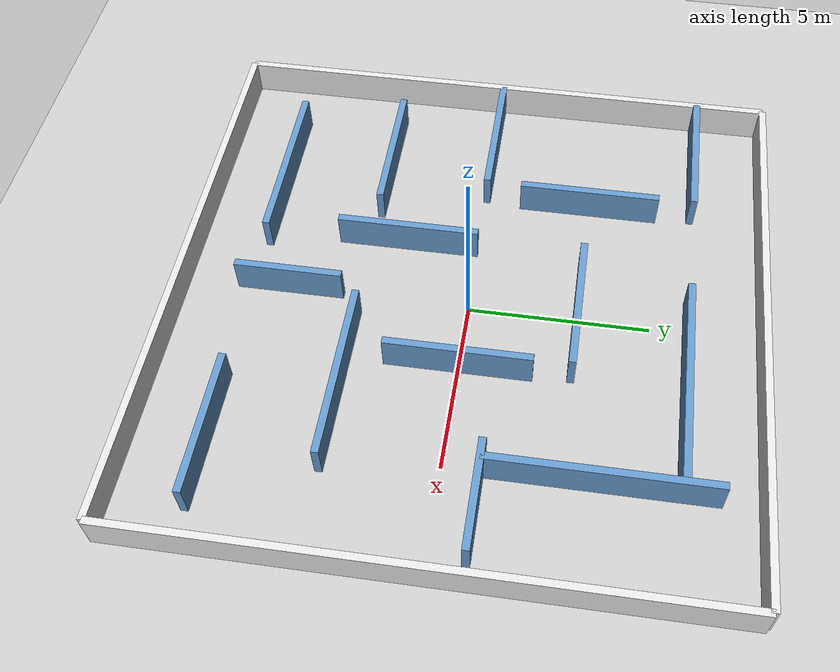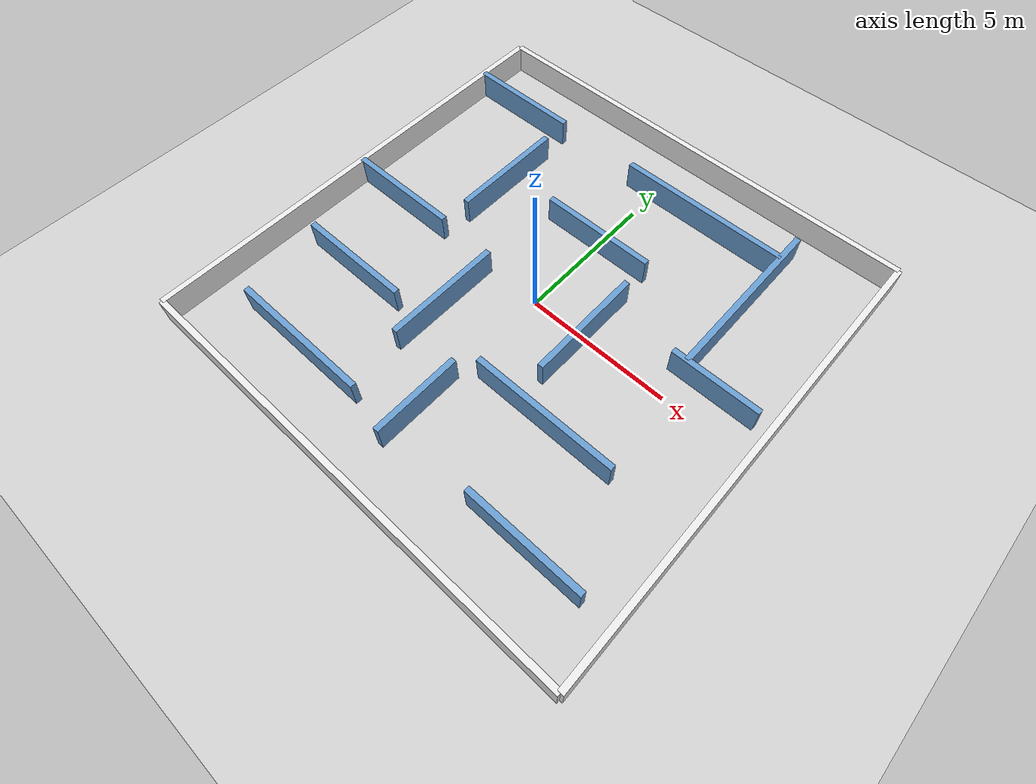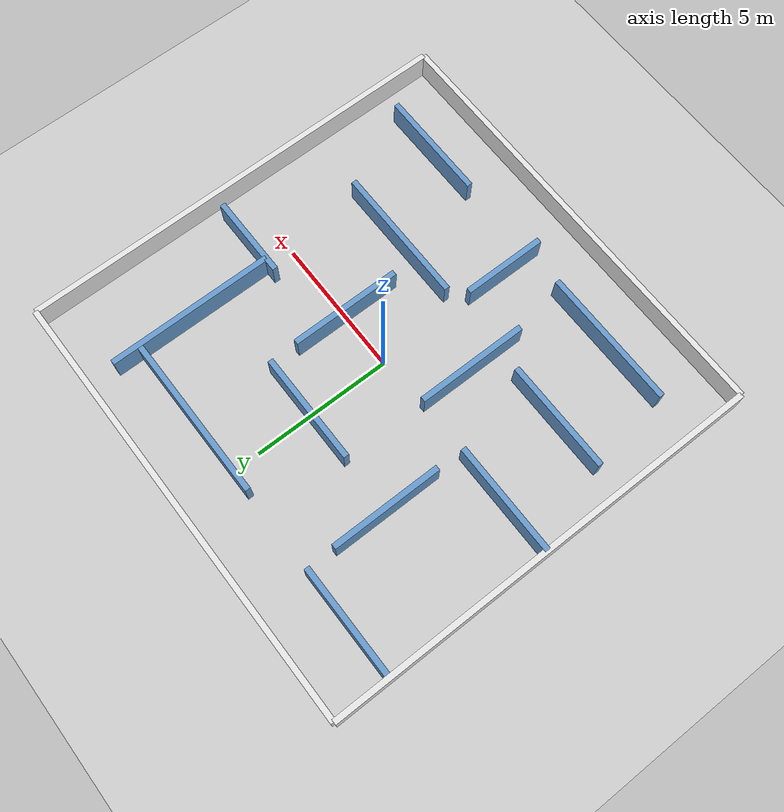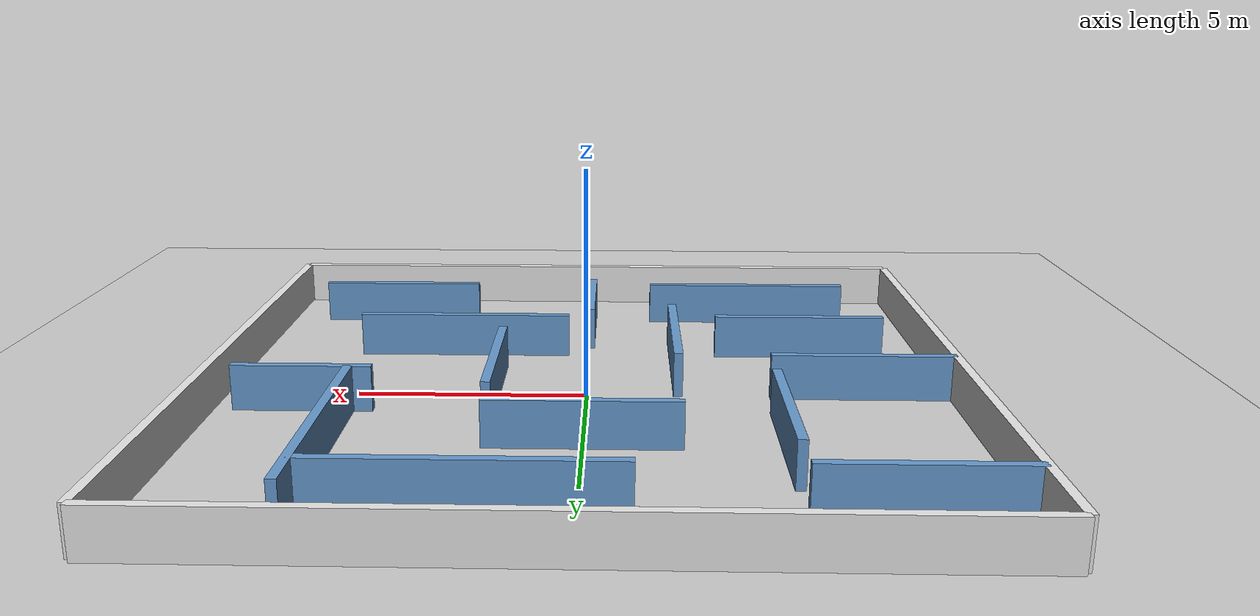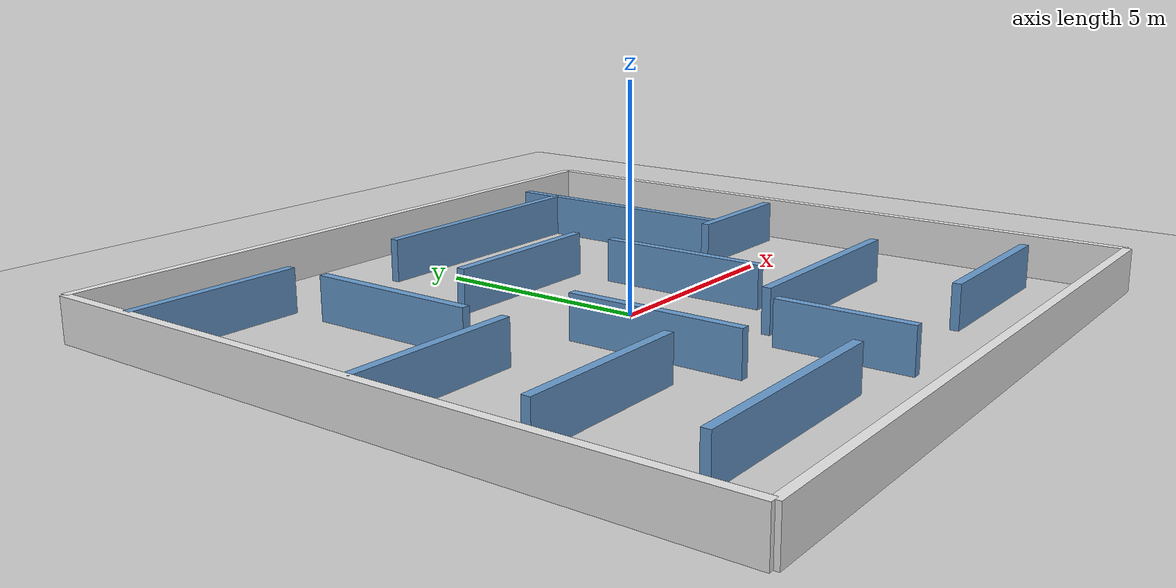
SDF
<?xml version="1.0"?>
<sdf version="1.6">
  <world name="maze">
    <include><uri>model://sun</uri></include>
    <include><uri>model://ground_plane</uri></include>
    <physics type="ode">
      <real_time_update_rate>1000</real_time_update_rate>
      <max_step_size>0.001</max_step_size>
      <real_time_factor>1</real_time_factor>
    </physics>

    <!-- Outer boundary -->
    <model name="wall_north"><static>true</static><pose>0 8 0.5 0 0 0</pose>
      <link name="link">
        <collision name="col"><geometry><box><size>16 0.2 1</size></box></geometry></collision>
        <visual name="vis"><geometry><box><size>16 0.2 1</size></box></geometry>
        <material><ambient>0.9 0.9 0.9 1</ambient></material></visual>
      </link></model>

    <model name="wall_south"><static>true</static><pose>0 -8 0.5 0 0 0</pose>
      <link name="link">
        <collision name="col"><geometry><box><size>16 0.2 1</size></box></geometry></collision>
        <visual name="vis"><geometry><box><size>16 0.2 1</size></box></geometry>
        <material><ambient>0.9 0.9 0.9 1</ambient></material></visual>
      </link></model>

    <model name="wall_east"><static>true</static><pose>8 0 0.5 0 0 0</pose>
      <link name="link">
        <collision name="col"><geometry><box><size>0.2 16 1</size></box></geometry></collision>
        <visual name="vis"><geometry><box><size>0.2 16 1</size></box></geometry>
        <material><ambient>0.9 0.9 0.9 1</ambient></material></visual>
      </link></model>

    <model name="wall_west"><static>true</static><pose>-8 0 0.5 0 0 0</pose>
      <link name="link">
        <collision name="col"><geometry><box><size>0.2 16 1</size></box></geometry></collision>
        <visual name="vis"><geometry><box><size>0.2 16 1</size></box></geometry>
        <material><ambient>0.9 0.9 0.9 1</ambient></material></visual>
      </link></model>

    <!-- Interior maze walls -->
    <model name="m1"><static>true</static><pose>-6 6 0.5 0 0 0</pose>
      <link name="link"><collision name="col"><geometry><box><size>4 0.2 1</size></box></geometry></collision>
      <visual name="vis"><geometry><box><size>4 0.2 1</size></box></geometry>
      <material><ambient>0.4 0.6 0.8 1</ambient></material></visual></link></model>

    <model name="m2"><static>true</static><pose>2 6 0.5 0 0 0</pose>
      <link name="link"><collision name="col"><geometry><box><size>6 0.2 1</size></box></geometry></collision>
      <visual name="vis"><geometry><box><size>6 0.2 1</size></box></geometry>
      <material><ambient>0.4 0.6 0.8 1</ambient></material></visual></link></model>

    <model name="m3"><static>true</static><pose>-4 3 0.5 0 0 1.5708</pose>
      <link name="link"><collision name="col"><geometry><box><size>4 0.2 1</size></box></geometry></collision>
      <visual name="vis"><geometry><box><size>4 0.2 1</size></box></geometry>
      <material><ambient>0.4 0.6 0.8 1</ambient></material></visual></link></model>

    <model name="m4"><static>true</static><pose>0 3 0.5 0 0 0</pose>
      <link name="link"><collision name="col"><geometry><box><size>4 0.2 1</size></box></geometry></collision>
      <visual name="vis"><geometry><box><size>4 0.2 1</size></box></geometry>
      <material><ambient>0.4 0.6 0.8 1</ambient></material></visual></link></model>

    <model name="m5"><static>true</static><pose>5 4 0.5 0 0 1.5708</pose>
      <link name="link"><collision name="col"><geometry><box><size>6 0.2 1</size></box></geometry></collision>
      <visual name="vis"><geometry><box><size>6 0.2 1</size></box></geometry>
      <material><ambient>0.4 0.6 0.8 1</ambient></material></visual></link></model>

    <model name="m6"><static>true</static><pose>-6 0 0.5 0 0 0</pose>
      <link name="link"><collision name="col"><geometry><box><size>4 0.2 1</size></box></geometry></collision>
      <visual name="vis"><geometry><box><size>4 0.2 1</size></box></geometry>
      <material><ambient>0.4 0.6 0.8 1</ambient></material></visual></link></model>

    <model name="m7"><static>true</static><pose>2 0 0.5 0 0 1.5708</pose>
      <link name="link"><collision name="col"><geometry><box><size>4 0.2 1</size></box></geometry></collision>
      <visual name="vis"><geometry><box><size>4 0.2 1</size></box></geometry>
      <material><ambient>0.4 0.6 0.8 1</ambient></material></visual></link></model>

    <model name="m8"><static>true</static><pose>6 1 0.5 0 0 0</pose>
      <link name="link"><collision name="col"><geometry><box><size>3 0.2 1</size></box></geometry></collision>
      <visual name="vis"><geometry><box><size>3 0.2 1</size></box></geometry>
      <material><ambient>0.4 0.6 0.8 1</ambient></material></visual></link></model>

    <model name="m9"><static>true</static><pose>-2 -2 0.5 0 0 1.5708</pose>
      <link name="link"><collision name="col"><geometry><box><size>4 0.2 1</size></box></geometry></collision>
      <visual name="vis"><geometry><box><size>4 0.2 1</size></box></geometry>
      <material><ambient>0.4 0.6 0.8 1</ambient></material></visual></link></model>

    <model name="m10"><static>true</static><pose>3 -3 0.5 0 0 0</pose>
      <link name="link"><collision name="col"><geometry><box><size>5 0.2 1</size></box></geometry></collision>
      <visual name="vis"><geometry><box><size>5 0.2 1</size></box></geometry>
      <material><ambient>0.4 0.6 0.8 1</ambient></material></visual></link></model>

    <model name="m11"><static>true</static><pose>-5 -3 0.5 0 0 0</pose>
      <link name="link"><collision name="col"><geometry><box><size>4 0.2 1</size></box></geometry></collision>
      <visual name="vis"><geometry><box><size>4 0.2 1</size></box></geometry>
      <material><ambient>0.4 0.6 0.8 1</ambient></material></visual></link></model>

    <model name="m12"><static>true</static><pose>0 -5 0.5 0 0 1.5708</pose>
      <link name="link"><collision name="col"><geometry><box><size>3 0.2 1</size></box></geometry></collision>
      <visual name="vis"><geometry><box><size>3 0.2 1</size></box></geometry>
      <material><ambient>0.4 0.6 0.8 1</ambient></material></visual></link></model>

    <model name="m13"><static>true</static><pose>-4 -6 0.5 0 0 0</pose>
      <link name="link"><collision name="col"><geometry><box><size>5 0.2 1</size></box></geometry></collision>
      <visual name="vis"><geometry><box><size>5 0.2 1</size></box></geometry>
      <material><ambient>0.4 0.6 0.8 1</ambient></material></visual></link></model>

    <model name="m14"><static>true</static><pose>5 -6 0.5 0 0 0</pose>
      <link name="link"><collision name="col"><geometry><box><size>4 0.2 1</size></box></geometry></collision>
      <visual name="vis"><geometry><box><size>4 0.2 1</size></box></geometry>
      <material><ambient>0.4 0.6 0.8 1</ambient></material></visual></link></model>

  </world>
</sdf>
